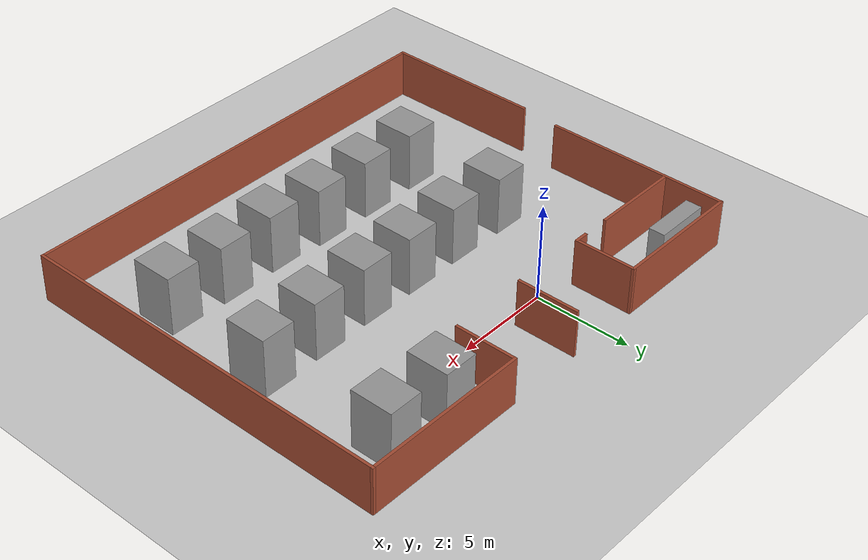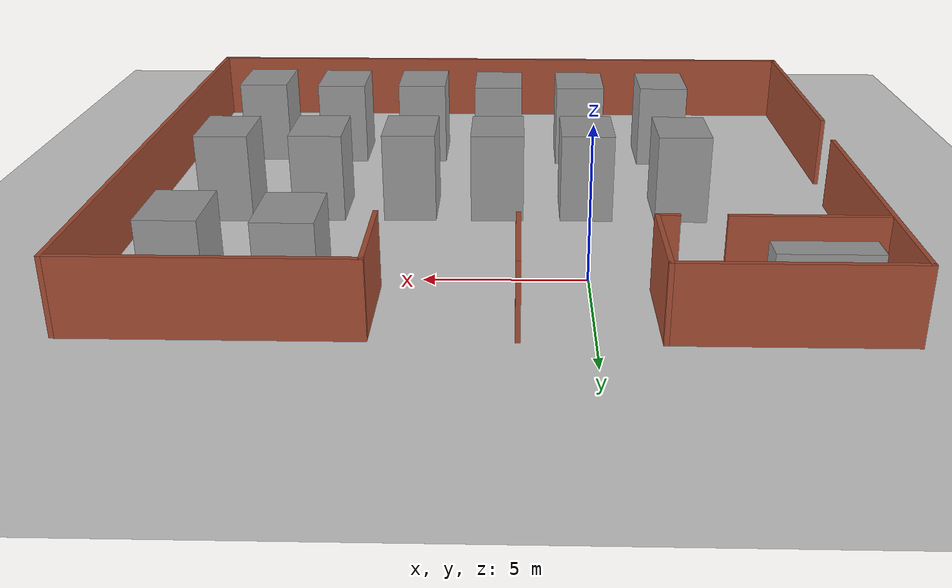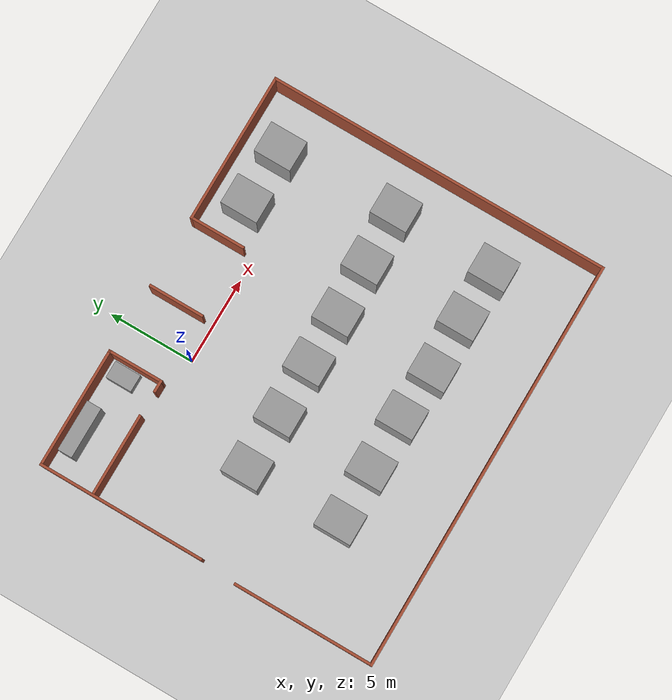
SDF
<sdf version="1.6">
 <world name="default">
  <light name="sun" type="directional">
   <pose>0 0 10 0 -0 0</pose>
   <diffuse>0.8 0.8 0.8 1</diffuse>
   <specular>0.2 0.2 0.2 1</specular>
   <attenuation>
    <range>1000</range>
    <constant>0.9</constant>
    <linear>0.01</linear>
    <quadratic>0.001</quadratic>
   </attenuation>
   <direction>-0.5 0.1 -0.9</direction>
  </light>
  <model name="ground_plane">
   <static>1</static>
   <link name="link">
    <collision name="collision">
     <geometry><plane><normal>0 0 1</normal><size>100 100</size></plane></geometry>
     <surface><friction><ode><mu>100</mu><mu2>50</mu2></ode></friction></surface>
    </collision>
    <visual name="visual">
     <cast_shadows>0</cast_shadows>
     <geometry><plane><normal>0 0 1</normal><size>100 100</size></plane></geometry>
     <material>
      <script><uri>file://media/materials/scripts/gazebo.material</uri><name>Gazebo/Grey</name></script>
     </material>
    </visual>
   </link>
  </model>
  <gravity>0 0 -9.8</gravity>
  <magnetic_field>6e-06 2.3e-05 -4.2e-05</magnetic_field>
  <atmosphere type="adiabatic"/>
  <physics name="default_physics" default="0" type="ode">
   <max_step_size>0.001</max_step_size>
   <real_time_factor>1</real_time_factor>
   <real_time_update_rate>1000</real_time_update_rate>
  </physics>
  <scene><ambient>0.4 0.4 0.4 1</ambient><background>0.7 0.7 0.7 1</background><shadows>1</shadows></scene>
  <spherical_coordinates>
   <surface_model>EARTH_WGS84</surface_model>
   <latitude_deg>0</latitude_deg>
   <longitude_deg>0</longitude_deg>
   <elevation>0</elevation>
   <heading_deg>0</heading_deg>
  </spherical_coordinates>
  <model name="enviroment_1">
   <pose>2.98612 -6.24566 0 0 -0 0</pose>
   <link name="Wall_0">
    <collision name="Wall_0_Collision">
     <geometry><box><size>8.25 0.15 2.5</size></box></geometry>
     <pose>0 0 1.25 0 -0 0</pose>
    </collision>
    <visual name="Wall_0_Visual">
     <pose>0 0 1.25 0 -0 0</pose>
     <geometry><box><size>8.25 0.15 2.5</size></box></geometry>
     <material>
      <script><uri>file://media/materials/scripts/gazebo.material</uri><name>Gazebo/Bricks</name></script>
      <ambient>1 1 1 1</ambient>
     </material>
     <meta><layer>0</layer></meta>
    </visual>
    <pose>-11.925 -5.8997 0 0 -0 -1.5708</pose>
   </link>
   <link name="Wall_1">
    <collision name="Wall_1_Collision">
     <geometry><box><size>24 0.15 2.5</size></box></geometry>
     <pose>0 0 1.25 0 -0 0</pose>
    </collision>
    <visual name="Wall_1_Visual">
     <pose>0 0 1.25 0 -0 0</pose>
     <geometry><box><size>24 0.15 2.5</size></box></geometry>
     <material>
      <script><uri>file://media/materials/scripts/gazebo.material</uri><name>Gazebo/Bricks</name></script>
      <ambient>1 1 1 1</ambient>
     </material>
     <meta><layer>0</layer></meta>
    </visual>
    <pose>0 -9.9497 0 0 -0 0</pose>
   </link>
   <link name="Wall_11">
    <collision name="Wall_11_Collision">
     <geometry><box><size>3.25 0.15 2.5</size></box></geometry>
     <pose>0 0 1.25 0 -0 0</pose>
    </collision>
    <visual name="Wall_11_Visual">
     <pose>0 0 1.25 0 -0 0</pose>
     <geometry><box><size>3.25 0.15 2.5</size></box></geometry>
     <material>
      <script><uri>file://media/materials/scripts/gazebo.material</uri><name>Gazebo/Bricks</name></script>
      <ambient>1 1 1 1</ambient>
     </material>
     <meta><layer>0</layer></meta>
    </visual>
    <pose>-0.85303 8.33887 0 0 -0 1.5708</pose>
   </link>
   <link name="Wall_13">
    <collision name="Wall_13_Collision">
     <geometry><box><size>4.75 0.15 2.5</size></box></geometry>
     <pose>0 0 1.25 0 -0 0</pose>
    </collision>
    <visual name="Wall_13_Visual">
     <pose>0 0 1.25 0 -0 0</pose>
     <geometry><box><size>4.75 0.15 2.5</size></box></geometry>
     <material>
      <script><uri>file://media/materials/scripts/gazebo.material</uri><name>Gazebo/Bricks</name></script>
      <ambient>1 1 1 1</ambient>
     </material>
     <meta><layer>0</layer></meta>
    </visual>
    <pose>-9.29736 6.8497 0 0 -0 3.14159</pose>
   </link>
   <link name="Wall_2">
    <collision name="Wall_2_Collision">
     <geometry><box><size>20 0.15 2.5</size></box></geometry>
     <pose>0 0 1.25 0 -0 0</pose>
    </collision>
    <visual name="Wall_2_Visual">
     <pose>0 0 1.25 0 -0 0</pose>
     <geometry><box><size>20 0.15 2.5</size></box></geometry>
     <material>
      <script><uri>file://media/materials/scripts/gazebo.material</uri><name>Gazebo/Bricks</name></script>
      <ambient>1 1 1 1</ambient>
     </material>
     <meta><layer>0</layer></meta>
    </visual>
    <pose>11.925 -0.024702 0 0 -0 1.5708</pose>
   </link>
   <link name="Wall_3">
    <collision name="Wall_3_Collision">
     <geometry><box><size>8.75 0.15 2.5</size></box></geometry>
     <pose>0 0 1.25 0 -0 0</pose>
    </collision>
    <visual name="Wall_3_Visual">
     <pose>0 0 1.25 0 -0 0</pose>
     <geometry><box><size>8.75 0.15 2.5</size></box></geometry>
     <material>
      <script><uri>file://media/materials/scripts/gazebo.material</uri><name>Gazebo/Bricks</name></script>
      <ambient>1 1 1 1</ambient>
     </material>
     <meta><layer>0</layer></meta>
    </visual>
    <pose>7.625 9.9003 0 0 -0 3.14159</pose>
   </link>
   <link name="Wall_4">
    <collision name="Wall_4_Collision">
     <geometry><box><size>3.25 0.15 2.5</size></box></geometry>
     <pose>0 0 1.25 0 -0 0</pose>
    </collision>
    <visual name="Wall_4_Visual">
     <pose>0 0 1.25 0 -0 0</pose>
     <geometry><box><size>3.25 0.15 2.5</size></box></geometry>
     <material>
      <script><uri>file://media/materials/scripts/gazebo.material</uri><name>Gazebo/Bricks</name></script>
      <ambient>1 1 1 1</ambient>
     </material>
     <meta><layer>0</layer></meta>
    </visual>
    <pose>3.325 8.3503 0 0 -0 -1.5708</pose>
   </link>
   <link name="Wall_6">
    <collision name="Wall_6_Collision">
     <geometry><box><size>0.75 0.15 2.5</size></box></geometry>
     <pose>0 0 1.25 0 -0 0</pose>
    </collision>
    <visual name="Wall_6_Visual">
     <pose>0 0 1.25 0 -0 0</pose>
     <geometry><box><size>0.75 0.15 2.5</size></box></geometry>
     <material>
      <script><uri>file://media/materials/scripts/gazebo.material</uri><name>Gazebo/Bricks</name></script>
      <ambient>1 1 1 1</ambient>
     </material>
     <meta><layer>0</layer></meta>
    </visual>
    <pose>-5.17649 6.8497 0 0 -0 0</pose>
   </link>
   <link name="Wall_7">
    <collision name="Wall_7_Collision">
     <geometry><box><size>3.25 0.15 2.5</size></box></geometry>
     <pose>0 0 1.25 0 -0 0</pose>
    </collision>
    <visual name="Wall_7_Visual">
     <pose>0 0 1.25 0 -0 0</pose>
     <geometry><box><size>3.25 0.15 2.5</size></box></geometry>
     <material>
      <script><uri>file://media/materials/scripts/gazebo.material</uri><name>Gazebo/Bricks</name></script>
      <ambient>1 1 1 1</ambient>
     </material>
     <meta><layer>0</layer></meta>
    </visual>
    <pose>-4.87649 8.3997 0 0 -0 1.5708</pose>
   </link>
   <link name="Wall_8">
    <collision name="Wall_8_Collision">
     <geometry><box><size>7 0.15 2.5</size></box></geometry>
     <pose>0 0 1.25 0 -0 0</pose>
    </collision>
    <visual name="Wall_8_Visual">
     <pose>0 0 1.25 0 -0 0</pose>
     <geometry><box><size>7 0.15 2.5</size></box></geometry>
     <material>
      <script><uri>file://media/materials/scripts/gazebo.material</uri><name>Gazebo/Bricks</name></script>
      <ambient>1 1 1 1</ambient>
     </material>
     <meta><layer>0</layer></meta>
    </visual>
    <pose>-8.30149 9.9497 0 0 -0 3.14159</pose>
   </link>
   <link name="Wall_9">
    <collision name="Wall_9_Collision">
     <geometry><box><size>9.75 0.15 2.5</size></box></geometry>
     <pose>0 0 1.25 0 -0 0</pose>
    </collision>
    <visual name="Wall_9_Visual">
     <pose>0 0 1.25 0 -0 0</pose>
     <geometry><box><size>9.75 0.15 2.5</size></box></geometry>
     <material>
      <script><uri>file://media/materials/scripts/gazebo.material</uri><name>Gazebo/Bricks</name></script>
      <ambient>1 1 1 1</ambient>
     </material>
     <meta><layer>0</layer></meta>
    </visual>
    <pose>-11.7265 5.1497 0 0 -0 -1.5708</pose>
   </link>
   <static>1</static>
  </model>
  <model name="unit_box">
   <pose>-3.42731 -5.53393 1.53205 1e-06 -0 0.000166</pose>
   <link name="link">
    <inertial>
     <mass>1</mass>
     <inertia>
      <ixx>0.166667</ixx>
      <ixy>0</ixy>
      <ixz>0</ixz>
      <iyy>0.166667</iyy>
      <iyz>0</iyz>
      <izz>0.166667</izz>
     </inertia>
    </inertial>
    <collision name="collision"><geometry><box><size>1.78607 2.17889 3.06409</size></box></geometry></collision>
    <visual name="visual">
     <geometry><box><size>1.78607 2.17889 3.06409</size></box></geometry>
     <material>
      <script><name>Gazebo/Grey</name><uri>file://media/materials/scripts/gazebo.material</uri></script>
     </material>
    </visual>
   </link>
  </model>
  <model name="unit_box_clone">
   <pose>-0.196407 -5.56499 1.53204 -2e-06 0 0.000166</pose>
   <link name="link">
    <inertial>
     <mass>1</mass>
     <inertia>
      <ixx>0.166667</ixx>
      <ixy>0</ixy>
      <ixz>0</ixz>
      <iyy>0.166667</iyy>
      <iyz>0</iyz>
      <izz>0.166667</izz>
     </inertia>
    </inertial>
    <collision name="collision"><geometry><box><size>1.78607 2.17889 3.06409</size></box></geometry></collision>
    <visual name="visual">
     <geometry><box><size>1.78607 2.17889 3.06409</size></box></geometry>
     <material>
      <script><name>Gazebo/Grey</name><uri>file://media/materials/scripts/gazebo.material</uri></script>
     </material>
    </visual>
   </link>
  </model>
  <model name="unit_box_clone_0">
   <pose>2.84741 -5.52228 1.53205 -1e-06 0 0.000177</pose>
   <link name="link">
    <inertial>
     <mass>1</mass>
     <inertia>
      <ixx>0.166667</ixx>
      <ixy>0</ixy>
      <ixz>0</ixz>
      <iyy>0.166667</iyy>
      <iyz>0</iyz>
      <izz>0.166667</izz>
     </inertia>
    </inertial>
    <collision name="collision"><geometry><box><size>1.78607 2.17889 3.06409</size></box></geometry></collision>
    <visual name="visual">
     <geometry><box><size>1.78607 2.17889 3.06409</size></box></geometry>
     <material>
      <script><name>Gazebo/Grey</name><uri>file://media/materials/scripts/gazebo.material</uri></script>
     </material>
    </visual>
   </link>
  </model>
  <model name="unit_box_clone_1">
   <pose>5.8276 -5.51081 1.53204 2e-06 -0 0.000166</pose>
   <link name="link">
    <inertial>
     <mass>1</mass>
     <inertia>
      <ixx>0.166667</ixx>
      <ixy>0</ixy>
      <ixz>0</ixz>
      <iyy>0.166667</iyy>
      <iyz>0</iyz>
      <izz>0.166667</izz>
     </inertia>
    </inertial>
    <collision name="collision"><geometry><box><size>1.78607 2.17889 3.06409</size></box></geometry></collision>
    <visual name="visual">
     <geometry><box><size>1.78607 2.17889 3.06409</size></box></geometry>
     <material>
      <script><name>Gazebo/Grey</name><uri>file://media/materials/scripts/gazebo.material</uri></script>
     </material>
    </visual>
   </link>
  </model>
  <model name="unit_box_clone_2">
   <pose>8.94652 -5.43299 1.53205 1e-06 -0 0.000177</pose>
   <link name="link">
    <inertial>
     <mass>1</mass>
     <inertia>
      <ixx>0.166667</ixx>
      <ixy>0</ixy>
      <ixz>0</ixz>
      <iyy>0.166667</iyy>
      <iyz>0</iyz>
      <izz>0.166667</izz>
     </inertia>
    </inertial>
    <collision name="collision"><geometry><box><size>1.78607 2.17889 3.06409</size></box></geometry></collision>
    <visual name="visual">
     <geometry><box><size>1.78607 2.17889 3.06409</size></box></geometry>
     <material>
      <script><name>Gazebo/Grey</name><uri>file://media/materials/scripts/gazebo.material</uri></script>
     </material>
    </visual>
   </link>
  </model>
  <model name="unit_box_clone_3">
   <pose>12.0892 -5.33385 1.53204 -2e-06 0 0.000166</pose>
   <link name="link">
    <inertial>
     <mass>1</mass>
     <inertia>
      <ixx>0.166667</ixx>
      <ixy>0</ixy>
      <ixz>0</ixz>
      <iyy>0.166667</iyy>
      <iyz>0</iyz>
      <izz>0.166667</izz>
     </inertia>
    </inertial>
    <collision name="collision"><geometry><box><size>1.78607 2.17889 3.06409</size></box></geometry></collision>
    <visual name="visual">
     <geometry><box><size>1.78607 2.17889 3.06409</size></box></geometry>
     <material>
      <script><name>Gazebo/Grey</name><uri>file://media/materials/scripts/gazebo.material</uri></script>
     </material>
    </visual>
   </link>
  </model>
  <model name="unit_box_clone_4">
   <pose>8.58364 1.61177 1.53205 -1e-06 0 0.000177</pose>
   <link name="link">
    <inertial>
     <mass>1</mass>
     <inertia>
      <ixx>0.166667</ixx>
      <ixy>0</ixy>
      <ixz>0</ixz>
      <iyy>0.166667</iyy>
      <iyz>0</iyz>
      <izz>0.166667</izz>
     </inertia>
    </inertial>
    <collision name="collision"><geometry><box><size>1.78607 2.17889 3.06409</size></box></geometry></collision>
    <visual name="visual">
     <geometry><box><size>1.78607 2.17889 3.06409</size></box></geometry>
     <material>
      <script><name>Gazebo/Grey</name><uri>file://media/materials/scripts/gazebo.material</uri></script>
     </material>
    </visual>
   </link>
  </model>
  <model name="unit_box_clone_5">
   <pose>11.8268 1.51635 1.53204 -2e-06 0 0.000166</pose>
   <link name="link">
    <inertial>
     <mass>1</mass>
     <inertia>
      <ixx>0.166667</ixx>
      <ixy>0</ixy>
      <ixz>0</ixz>
      <iyy>0.166667</iyy>
      <iyz>0</iyz>
      <izz>0.166667</izz>
     </inertia>
    </inertial>
    <collision name="collision"><geometry><box><size>1.78607 2.17889 3.06409</size></box></geometry></collision>
    <visual name="visual">
     <geometry><box><size>1.78607 2.17889 3.06409</size></box></geometry>
     <material>
      <script><name>Gazebo/Grey</name><uri>file://media/materials/scripts/gazebo.material</uri></script>
     </material>
    </visual>
   </link>
  </model>
  <model name="unit_box_clone_6">
   <pose>-3.37806 -11.0743 1.53205 -1e-06 -0 0.000144</pose>
   <link name="link">
    <inertial>
     <mass>1</mass>
     <inertia>
      <ixx>0.166667</ixx>
      <ixy>0</ixy>
      <ixz>0</ixz>
      <iyy>0.166667</iyy>
      <iyz>0</iyz>
      <izz>0.166667</izz>
     </inertia>
    </inertial>
    <collision name="collision"><geometry><box><size>1.78607 2.17889 3.06409</size></box></geometry></collision>
    <visual name="visual">
     <geometry><box><size>1.78607 2.17889 3.06409</size></box></geometry>
     <material>
      <script><name>Gazebo/Grey</name><uri>file://media/materials/scripts/gazebo.material</uri></script>
     </material>
    </visual>
   </link>
  </model>
  <model name="unit_box_clone_7">
   <pose>-0.210642 -11.0603 1.53204 2e-06 -0 0.000155</pose>
   <link name="link">
    <inertial>
     <mass>1</mass>
     <inertia>
      <ixx>0.166667</ixx>
      <ixy>0</ixy>
      <ixz>0</ixz>
      <iyy>0.166667</iyy>
      <iyz>0</iyz>
      <izz>0.166667</izz>
     </inertia>
    </inertial>
    <collision name="collision"><geometry><box><size>1.78607 2.17889 3.06409</size></box></geometry></collision>
    <visual name="visual">
     <geometry><box><size>1.78607 2.17889 3.06409</size></box></geometry>
     <material>
      <script><name>Gazebo/Grey</name><uri>file://media/materials/scripts/gazebo.material</uri></script>
     </material>
    </visual>
   </link>
  </model>
  <model name="unit_box_clone_8">
   <pose>2.90737 -11.078 1.53205 1e-06 -0 0.000144</pose>
   <link name="link">
    <inertial>
     <mass>1</mass>
     <inertia>
      <ixx>0.166667</ixx>
      <ixy>0</ixy>
      <ixz>0</ixz>
      <iyy>0.166667</iyy>
      <iyz>0</iyz>
      <izz>0.166667</izz>
     </inertia>
    </inertial>
    <collision name="collision"><geometry><box><size>1.78607 2.17889 3.06409</size></box></geometry></collision>
    <visual name="visual">
     <geometry><box><size>1.78607 2.17889 3.06409</size></box></geometry>
     <material>
      <script><name>Gazebo/Grey</name><uri>file://media/materials/scripts/gazebo.material</uri></script>
     </material>
    </visual>
   </link>
  </model>
  <model name="unit_box_clone_9">
   <pose>5.84468 -11.2579 1.53204 -2e-06 0 0.000155</pose>
   <link name="link">
    <inertial>
     <mass>1</mass>
     <inertia>
      <ixx>0.166667</ixx>
      <ixy>0</ixy>
      <ixz>0</ixz>
      <iyy>0.166667</iyy>
      <iyz>0</iyz>
      <izz>0.166667</izz>
     </inertia>
    </inertial>
    <collision name="collision"><geometry><box><size>1.78607 2.17889 3.06409</size></box></geometry></collision>
    <visual name="visual">
     <geometry><box><size>1.78607 2.17889 3.06409</size></box></geometry>
     <material>
      <script><name>Gazebo/Grey</name><uri>file://media/materials/scripts/gazebo.material</uri></script>
     </material>
    </visual>
   </link>
  </model>
  <model name="unit_box_clone_10">
   <pose>8.9356 -11.2001 1.53205 -1e-06 -0 0.000144</pose>
   <link name="link">
    <inertial>
     <mass>1</mass>
     <inertia>
      <ixx>0.166667</ixx>
      <ixy>0</ixy>
      <ixz>0</ixz>
      <iyy>0.166667</iyy>
      <iyz>0</iyz>
      <izz>0.166667</izz>
     </inertia>
    </inertial>
    <collision name="collision"><geometry><box><size>1.78607 2.17889 3.06409</size></box></geometry></collision>
    <visual name="visual">
     <geometry><box><size>1.78607 2.17889 3.06409</size></box></geometry>
     <material>
      <script><name>Gazebo/Grey</name><uri>file://media/materials/scripts/gazebo.material</uri></script>
     </material>
    </visual>
   </link>
  </model>
  <model name="unit_box_clone_11">
   <pose>11.9578 -11.2964 1.53204 2e-06 -0 0.000155</pose>
   <link name="link">
    <inertial>
     <mass>1</mass>
     <inertia>
      <ixx>0.166667</ixx>
      <ixy>0</ixy>
      <ixz>0</ixz>
      <iyy>0.166667</iyy>
      <iyz>0</iyz>
      <izz>0.166667</izz>
     </inertia>
    </inertial>
    <collision name="collision"><geometry><box><size>1.78607 2.17889 3.06409</size></box></geometry></collision>
    <visual name="visual">
     <geometry><box><size>1.78607 2.17889 3.06409</size></box></geometry>
     <material>
      <script><name>Gazebo/Grey</name><uri>file://media/materials/scripts/gazebo.material</uri></script>
     </material>
    </visual>
   </link>
  </model>
  <model name="unit_box_0">
   <pose>-6.17296 2.93666 1.29324 1e-06 1e-06 0.000368</pose>
   <link name="link">
    <inertial>
     <mass>1</mass>
     <inertia>
      <ixx>0.166667</ixx>
      <ixy>0</ixy>
      <ixz>0</ixz>
      <iyy>0.166667</iyy>
      <iyz>0</iyz>
      <izz>0.166667</izz>
     </inertia>
    </inertial>
    <collision name="collision"><geometry><box><size>2.95811 0.837114 2.58648</size></box></geometry></collision>
    <visual name="visual">
     <geometry><box><size>2.95811 0.837114 2.58648</size></box></geometry>
     <material>
      <script><name>Gazebo/Grey</name><uri>file://media/materials/scripts/gazebo.material</uri></script>
     </material>
    </visual>
   </link>
  </model>
  <model name="unit_box_1">
   <pose>-2.58141 2.60914 0.5 -0 -0 -0</pose>
   <link name="link">
    <inertial>
     <mass>1</mass>
     <inertia>
      <ixx>0.166667</ixx>
      <ixy>0</ixy>
      <ixz>0</ixz>
      <iyy>0.166667</iyy>
      <iyz>0</iyz>
      <izz>0.166667</izz>
     </inertia>
    </inertial>
    <collision name="collision"><geometry><box><size>1 1.5287 1</size></box></geometry></collision>
    <visual name="visual">
     <geometry><box><size>1 1.5287 1</size></box></geometry>
     <material>
      <script><name>Gazebo/Grey</name><uri>file://media/materials/scripts/gazebo.material</uri></script>
     </material>
    </visual>
   </link>
  </model>
 </world>
</sdf>
